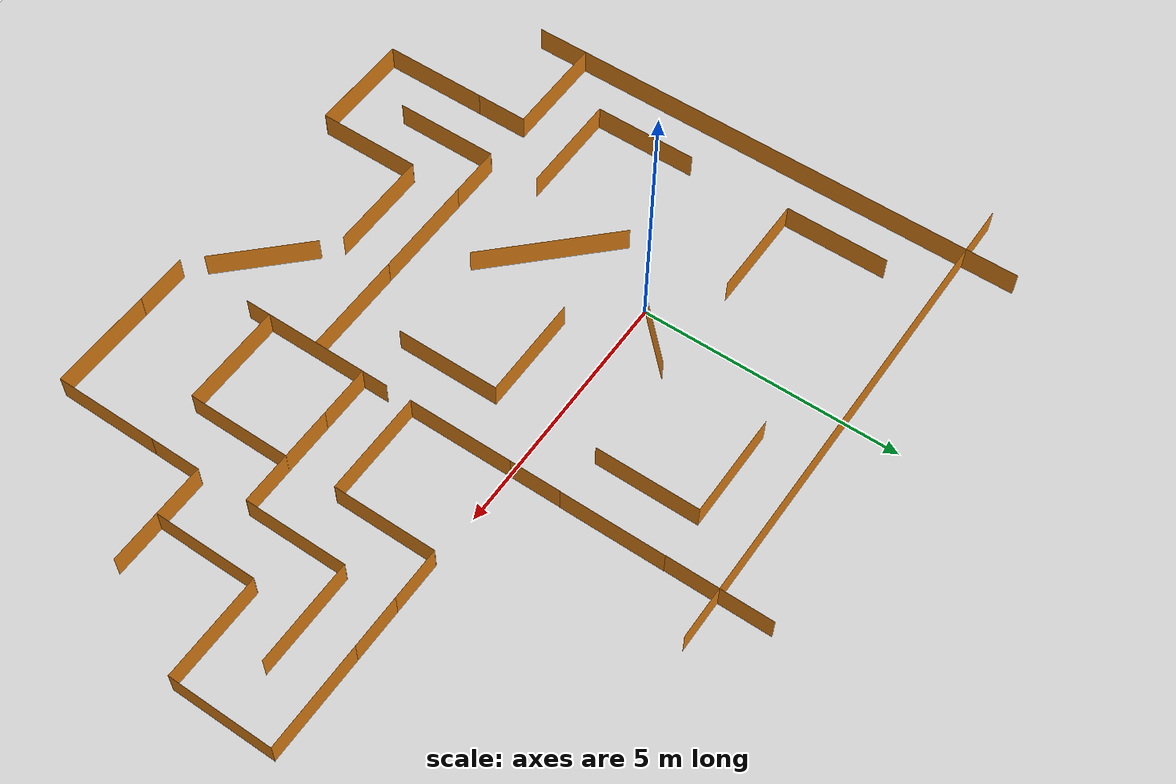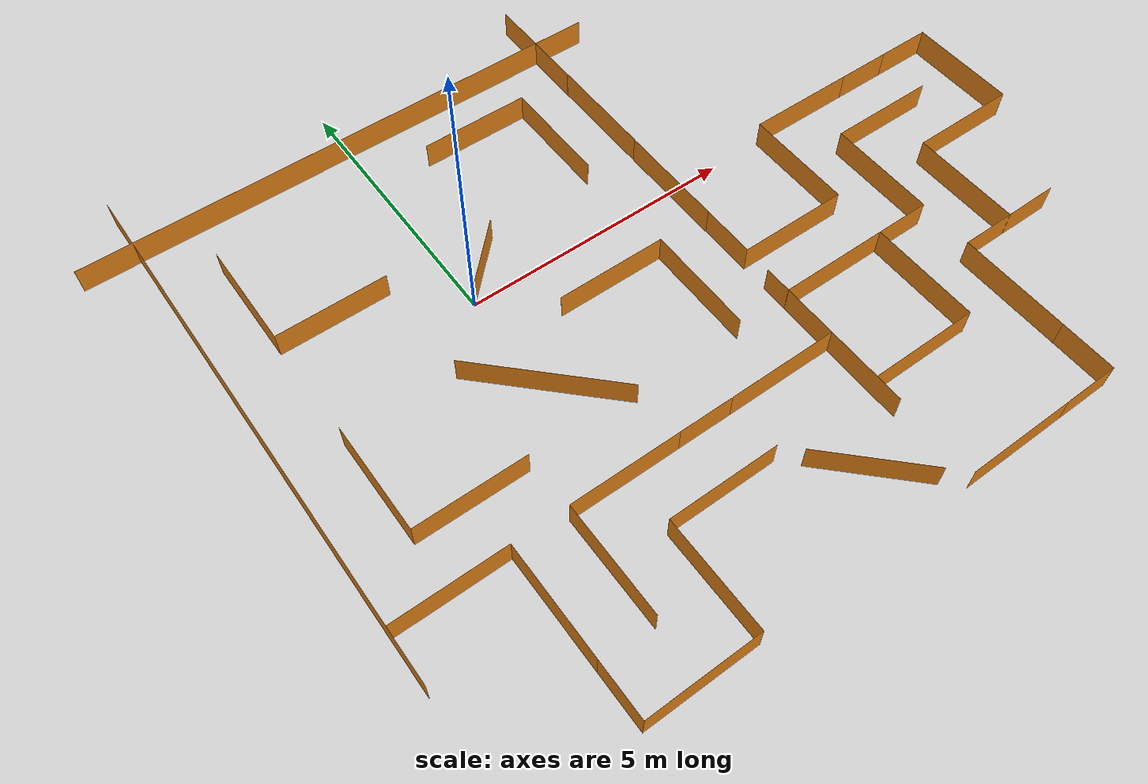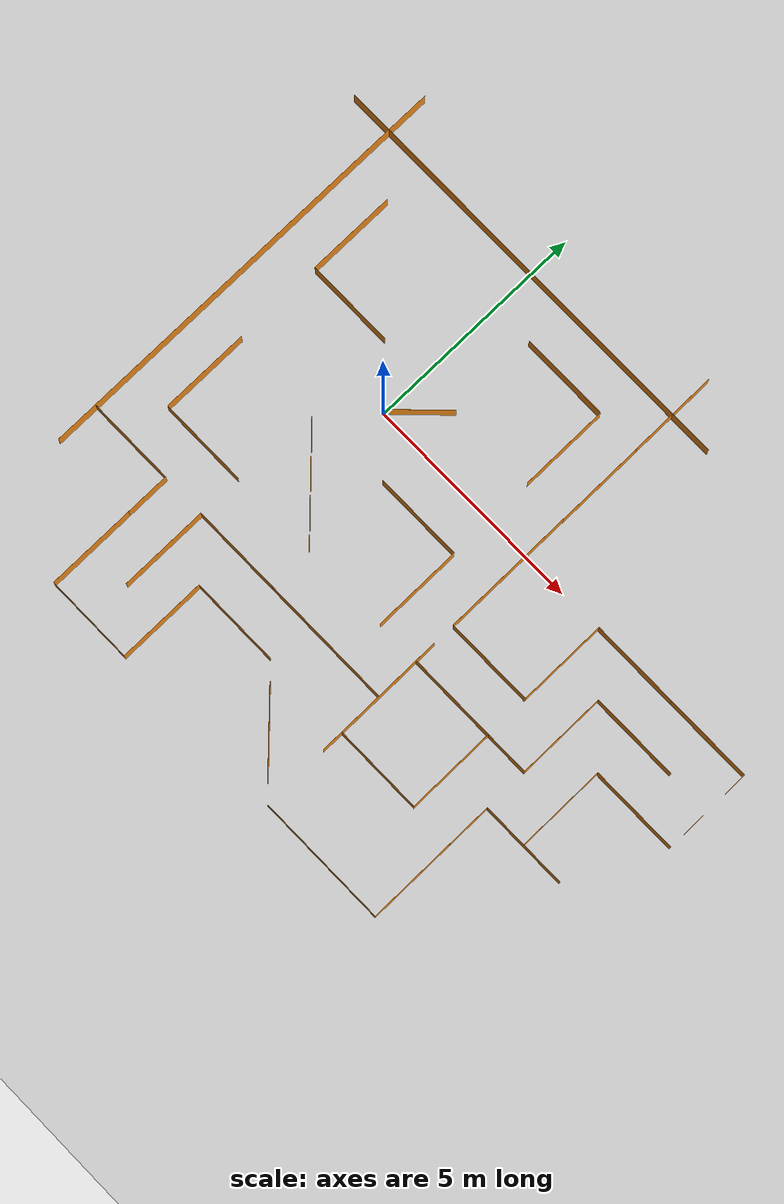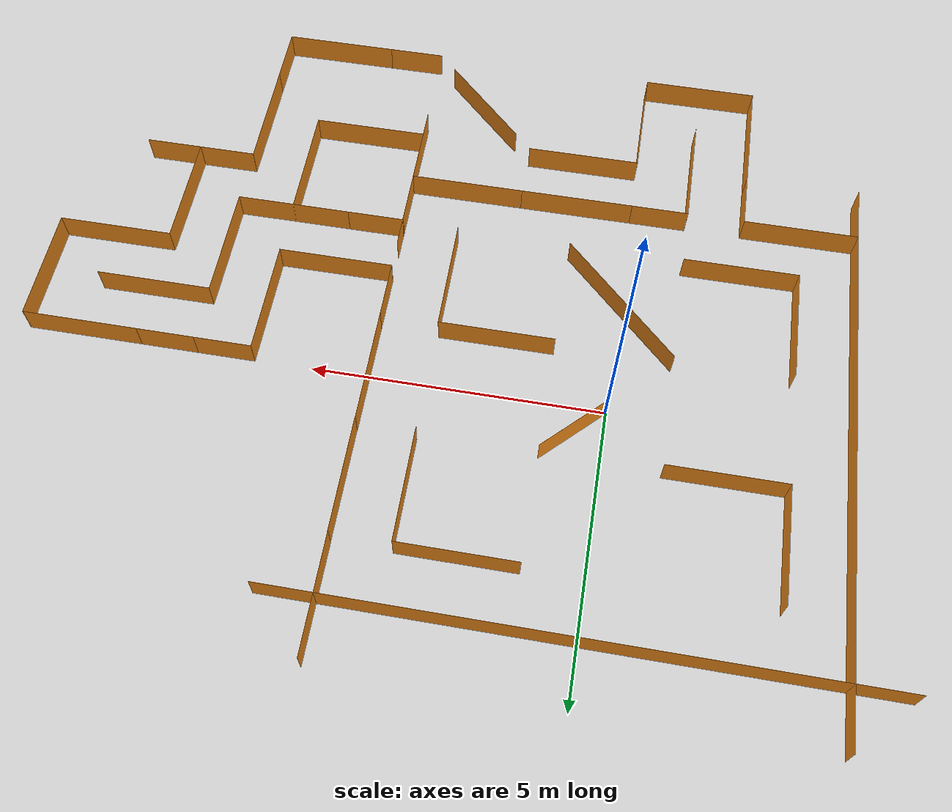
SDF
<sdf version="1.6">
 <world name="default">
  <model name="ground_plane">
   <static>1</static>
   <link name="link">
    <collision name="collision">
     <geometry><plane><normal>0 0 1</normal><size>100 100</size></plane></geometry>
     <surface><friction><ode><mu>100</mu><mu2>50</mu2></ode></friction></surface>
    </collision>
    <visual name="visual">
     <cast_shadows>0</cast_shadows>
     <geometry><plane><normal>0 0 1</normal><size>100 100</size></plane></geometry>
     <material>
      <script><uri>file://media/materials/scripts/gazebo.material</uri><name>Gazebo/Grey</name></script>
     </material>
    </visual>
   </link>
  </model>
  <model name="wall_0">
   <static>1</static>
   <link name="link">
    <collision name="collision"><geometry><box><size>10 0.001 1</size></box></geometry></collision>
    <visual name="visual">
     <geometry><box><size>10 0.001 1</size></box></geometry>
     <material>
      <script><name>Gazebo/Orange</name><uri>file://media/materials/scripts/gazebo.material</uri></script>
     </material>
    </visual>
   </link>
   <pose>0 4 0 0 0 -3.14159</pose>
  </model>
  <model name="wall_1">
   <static>1</static>
   <link name="link">
    <collision name="collision"><geometry><box><size>10 0.001 1</size></box></geometry></collision>
    <visual name="visual">
     <geometry><box><size>10 0.001 1</size></box></geometry>
     <material>
      <script><name>Gazebo/Orange</name><uri>file://media/materials/scripts/gazebo.material</uri></script>
     </material>
    </visual>
   </link>
   <pose>-4 0 0 0 0 -1.5708</pose>
  </model>
  <model name="wall_4">
   <static>1</static>
   <link name="link">
    <collision name="collision"><geometry><box><size>2 0.001 1</size></box></geometry></collision>
    <visual name="visual">
     <geometry><box><size>2 0.001 1</size></box></geometry>
     <material>
      <script><name>Gazebo/Orange</name><uri>file://media/materials/scripts/gazebo.material</uri></script>
     </material>
    </visual>
   </link>
   <pose>-3 -2 0 0 -0 1.5708</pose>
  </model>
  <model name="wall_5">
   <static>1</static>
   <link name="link">
    <collision name="collision"><geometry><box><size>2 0.001 1</size></box></geometry></collision>
    <visual name="visual">
     <geometry><box><size>2 0.001 1</size></box></geometry>
     <material>
      <script><name>Gazebo/Orange</name><uri>file://media/materials/scripts/gazebo.material</uri></script>
     </material>
    </visual>
   </link>
   <pose>-2 -3 0 0 -0 0</pose>
  </model>
  <model name="wall_6">
   <static>1</static>
   <link name="link">
    <collision name="collision"><geometry><box><size>2 0.001 1</size></box></geometry></collision>
    <visual name="visual">
     <geometry><box><size>2 0.001 1</size></box></geometry>
     <material>
      <script><name>Gazebo/Orange</name><uri>file://media/materials/scripts/gazebo.material</uri></script>
     </material>
    </visual>
   </link>
   <pose>3 2 0 0 0 -1.5708</pose>
  </model>
  <model name="wall_7">
   <static>1</static>
   <link name="link">
    <collision name="collision"><geometry><box><size>2 0.001 1</size></box></geometry></collision>
    <visual name="visual">
     <geometry><box><size>2 0.001 1</size></box></geometry>
     <material>
      <script><name>Gazebo/Orange</name><uri>file://media/materials/scripts/gazebo.material</uri></script>
     </material>
    </visual>
   </link>
   <pose>2 3 0 0 0 -3.14159</pose>
  </model>
  <model name="wall_8">
   <static>1</static>
   <link name="link">
    <collision name="collision"><geometry><box><size>2 0.001 1</size></box></geometry></collision>
    <visual name="visual">
     <geometry><box><size>2 0.001 1</size></box></geometry>
     <material>
      <script><name>Gazebo/Orange</name><uri>file://media/materials/scripts/gazebo.material</uri></script>
     </material>
    </visual>
   </link>
   <pose>2 -1 0 0 -0 0</pose>
  </model>
  <model name="wall_9">
   <static>1</static>
   <link name="link">
    <collision name="collision"><geometry><box><size>2 0.001 1</size></box></geometry></collision>
    <visual name="visual">
     <geometry><box><size>2 0.001 1</size></box></geometry>
     <material>
      <script><name>Gazebo/Orange</name><uri>file://media/materials/scripts/gazebo.material</uri></script>
     </material>
    </visual>
   </link>
   <pose>3 -2 0 0 0 -1.5708</pose>
  </model>
  <model name="wall_10">
   <static>1</static>
   <link name="link">
    <collision name="collision"><geometry><box><size>2 0.001 1</size></box></geometry></collision>
    <visual name="visual">
     <geometry><box><size>2 0.001 1</size></box></geometry>
     <material>
      <script><name>Gazebo/Orange</name><uri>file://media/materials/scripts/gazebo.material</uri></script>
     </material>
    </visual>
   </link>
   <pose>-2 1 0 0 0 -3.14159</pose>
  </model>
  <model name="wall_11">
   <static>1</static>
   <link name="link">
    <collision name="collision"><geometry><box><size>2 0.001 1</size></box></geometry></collision>
    <visual name="visual">
     <geometry><box><size>2 0.001 1</size></box></geometry>
     <material>
      <script><name>Gazebo/Orange</name><uri>file://media/materials/scripts/gazebo.material</uri></script>
     </material>
    </visual>
   </link>
   <pose>-3 2 0 0 -0 1.5708</pose>
  </model>
  <model name="wall_12">
   <static>1</static>
   <link name="link">
    <collision name="collision"><geometry><box><size>2.82843 0.001 1</size></box></geometry></collision>
    <visual name="visual">
     <geometry><box><size>2.82843 0.001 1</size></box></geometry>
     <material>
      <script><name>Gazebo/Orange</name><uri>file://media/materials/scripts/gazebo.material</uri></script>
     </material>
    </visual>
   </link>
   <pose>0 -2 0 0 0 -0.785398</pose>
  </model>
  <model name="wall_14">
   <static>1</static>
   <link name="link">
    <collision name="collision"><geometry><box><size>1.41421 0.001 1</size></box></geometry></collision>
    <visual name="visual">
     <geometry><box><size>1.41421 0.001 1</size></box></geometry>
     <material>
      <script><name>Gazebo/Orange</name><uri>file://media/materials/scripts/gazebo.material</uri></script>
     </material>
    </visual>
   </link>
   <pose>0.5 0.5 0 0 -0 0.785398</pose>
  </model>
  <model name="wall_13_clone">
   <static>1</static>
   <link name="link">
    <collision name="collision"><geometry><box><size>3 0.001 1</size></box></geometry></collision>
    <visual name="visual">
     <geometry><box><size>3 0.001 1</size></box></geometry>
     <material>
      <script><name>Gazebo/Orange</name><uri>file://media/materials/scripts/gazebo.material</uri></script>
     </material>
    </visual>
   </link>
   <pose>4 -4 0 0 0 -1.5708</pose>
  </model>
  <model name="wall_13_clone_clone">
   <static>1</static>
   <link name="link">
    <collision name="collision"><geometry><box><size>2.02412 0.001 1</size></box></geometry></collision>
    <visual name="visual">
     <geometry><box><size>2.02412 0.001 1</size></box></geometry>
     <material>
      <script><name>Gazebo/Orange</name><uri>file://media/materials/scripts/gazebo.material</uri></script>
     </material>
    </visual>
   </link>
   <pose>5 -3 0 0 -0 3.14159</pose>
  </model>
  <model name="wall_13_clone_clone_0">
   <static>1</static>
   <link name="link">
    <collision name="collision"><geometry><box><size>2.00836 0.001 1</size></box></geometry></collision>
    <visual name="visual">
     <geometry><box><size>2.00836 0.001 1</size></box></geometry>
     <material>
      <script><name>Gazebo/Orange</name><uri>file://media/materials/scripts/gazebo.material</uri></script>
     </material>
    </visual>
   </link>
   <pose>4 4 0 0 0 -1.5708</pose>
  </model>
  <model name="wall_13_clone_clone_1">
   <static>1</static>
   <link name="link">
    <collision name="collision"><geometry><box><size>2.00836 0.001 1</size></box></geometry></collision>
    <visual name="visual">
     <geometry><box><size>2.00836 0.001 1</size></box></geometry>
     <material>
      <script><name>Gazebo/Orange</name><uri>file://media/materials/scripts/gazebo.material</uri></script>
     </material>
    </visual>
   </link>
   <pose>4.00414 1.99809 0 0 0 -1.5708</pose>
  </model>
  <model name="wall_13_clone_clone_1_clone">
   <static>1</static>
   <link name="link">
    <collision name="collision"><geometry><box><size>2.00836 0.001 1</size></box></geometry></collision>
    <visual name="visual">
     <geometry><box><size>2.00836 0.001 1</size></box></geometry>
     <material>
      <script><name>Gazebo/Orange</name><uri>file://media/materials/scripts/gazebo.material</uri></script>
     </material>
    </visual>
   </link>
   <pose>4 0 0 0 0 -1.5708</pose>
  </model>
  <model name="wall_13_clone_clone_1_clone_0">
   <static>1</static>
   <link name="link">
    <collision name="collision"><geometry><box><size>2.00836 0.001 1</size></box></geometry></collision>
    <visual name="visual">
     <geometry><box><size>2.00836 0.001 1</size></box></geometry>
     <material>
      <script><name>Gazebo/Orange</name><uri>file://media/materials/scripts/gazebo.material</uri></script>
     </material>
    </visual>
   </link>
   <pose>4.00011 -0.995104 0 0 0 -1.5708</pose>
  </model>
  <model name="wall_13_clone_clone_1_clone_1">
   <static>1</static>
   <link name="link">
    <collision name="collision"><geometry><box><size>2.00836 0.001 1</size></box></geometry></collision>
    <visual name="visual">
     <geometry><box><size>2.00836 0.001 1</size></box></geometry>
     <material>
      <script><name>Gazebo/Orange</name><uri>file://media/materials/scripts/gazebo.material</uri></script>
     </material>
    </visual>
   </link>
   <pose>5 -2 0 0 0 -4e-06</pose>
  </model>
  <model name="wall_13_clone_clone_1_clone_2">
   <static>1</static>
   <link name="link">
    <collision name="collision"><geometry><box><size>2.00836 0.001 1</size></box></geometry></collision>
    <visual name="visual">
     <geometry><box><size>2.00836 0.001 1</size></box></geometry>
     <material>
      <script><name>Gazebo/Orange</name><uri>file://media/materials/scripts/gazebo.material</uri></script>
     </material>
    </visual>
   </link>
   <pose>7 -2 0 0 0 -1.5708</pose>
  </model>
  <model name="wall_13_clone_clone_1_clone_3">
   <static>1</static>
   <link name="link">
    <collision name="collision"><geometry><box><size>2.00836 0.001 1</size></box></geometry></collision>
    <visual name="visual">
     <geometry><box><size>2.00836 0.001 1</size></box></geometry>
     <material>
      <script><name>Gazebo/Orange</name><uri>file://media/materials/scripts/gazebo.material</uri></script>
     </material>
    </visual>
   </link>
   <pose>6 -1 0 0 0 -1.5708</pose>
  </model>
  <model name="wall_13_clone_clone_1_clone_4">
   <static>1</static>
   <link name="link">
    <collision name="collision"><geometry><box><size>2.00836 0.001 1</size></box></geometry></collision>
    <visual name="visual">
     <geometry><box><size>2.00836 0.001 1</size></box></geometry>
     <material>
      <script><name>Gazebo/Orange</name><uri>file://media/materials/scripts/gazebo.material</uri></script>
     </material>
    </visual>
   </link>
   <pose>7 -2 0 0 0 -1.5708</pose>
  </model>
  <model name="wall_13_clone_clone_1_clone_5">
   <static>1</static>
   <link name="link">
    <collision name="collision"><geometry><box><size>2.00836 0.001 1</size></box></geometry></collision>
    <visual name="visual">
     <geometry><box><size>2.00836 0.001 1</size></box></geometry>
     <material>
      <script><name>Gazebo/Orange</name><uri>file://media/materials/scripts/gazebo.material</uri></script>
     </material>
    </visual>
   </link>
   <pose>6 -3 0 0 -0 3.14159</pose>
  </model>
  <model name="wall_13_clone_clone_clone">
   <static>1</static>
   <link name="link">
    <collision name="collision"><geometry><box><size>1.99802 0.001 1</size></box></geometry></collision>
    <visual name="visual">
     <geometry><box><size>1.99802 0.001 1</size></box></geometry>
     <material>
      <script><name>Gazebo/Orange</name><uri>file://media/materials/scripts/gazebo.material</uri></script>
     </material>
    </visual>
   </link>
   <pose>-3 -4 0 0 -0 3.14159</pose>
  </model>
  <model name="wall_13_clone_clone_clone_1">
   <static>1</static>
   <link name="link">
    <collision name="collision"><geometry><box><size>1.99802 0.001 1</size></box></geometry></collision>
    <visual name="visual">
     <geometry><box><size>1.99802 0.001 1</size></box></geometry>
     <material>
      <script><name>Gazebo/Orange</name><uri>file://media/materials/scripts/gazebo.material</uri></script>
     </material>
    </visual>
   </link>
   <pose>1 -4 0 0 -0 3.14159</pose>
  </model>
  <model name="wall_13_clone_clone_clone_2">
   <static>1</static>
   <link name="link">
    <collision name="collision"><geometry><box><size>1.99802 0.001 1</size></box></geometry></collision>
    <visual name="visual">
     <geometry><box><size>1.99802 0.001 1</size></box></geometry>
     <material>
      <script><name>Gazebo/Orange</name><uri>file://media/materials/scripts/gazebo.material</uri></script>
     </material>
    </visual>
   </link>
   <pose>3 -4 0 0 -0 3.14159</pose>
  </model>
  <model name="wall_13_clone_clone_1_clone_3_clone">
   <static>1</static>
   <link name="link">
    <collision name="collision"><geometry><box><size>2.00836 0.001 1</size></box></geometry></collision>
    <visual name="visual">
     <geometry><box><size>2.00836 0.001 1</size></box></geometry>
     <material>
      <script><name>Gazebo/Orange</name><uri>file://media/materials/scripts/gazebo.material</uri></script>
     </material>
    </visual>
   </link>
   <pose>-2 -5 0 0 0 -1.5708</pose>
  </model>
  <model name="wall_13_clone_clone_1_clone_3_clone_0">
   <static>1</static>
   <link name="link">
    <collision name="collision"><geometry><box><size>2.00836 0.001 1</size></box></geometry></collision>
    <visual name="visual">
     <geometry><box><size>2.00836 0.001 1</size></box></geometry>
     <material>
      <script><name>Gazebo/Orange</name><uri>file://media/materials/scripts/gazebo.material</uri></script>
     </material>
    </visual>
   </link>
   <pose>-1 -5 0 0 0 -1.5708</pose>
  </model>
  <model name="wall_13_clone_clone_1_clone_1_clone">
   <static>1</static>
   <link name="link">
    <collision name="collision"><geometry><box><size>2.00836 0.001 1</size></box></geometry></collision>
    <visual name="visual">
     <geometry><box><size>2.00836 0.001 1</size></box></geometry>
     <material>
      <script><name>Gazebo/Orange</name><uri>file://media/materials/scripts/gazebo.material</uri></script>
     </material>
    </visual>
   </link>
   <pose>0 -4 0 0 0 -4e-06</pose>
  </model>
  <model name="wall_13_clone_clone_1_clone_1_clone_0">
   <static>1</static>
   <link name="link">
    <collision name="collision"><geometry><box><size>2.00836 0.001 1</size></box></geometry></collision>
    <visual name="visual">
     <geometry><box><size>2.00836 0.001 1</size></box></geometry>
     <material>
      <script><name>Gazebo/Orange</name><uri>file://media/materials/scripts/gazebo.material</uri></script>
     </material>
    </visual>
   </link>
   <pose>-1 -7 0 0 0 -4e-06</pose>
  </model>
  <model name="wall_13_clone_clone_1_clone_0_clone">
   <static>1</static>
   <link name="link">
    <collision name="collision"><geometry><box><size>2.00836 0.001 1</size></box></geometry></collision>
    <visual name="visual">
     <geometry><box><size>2.00836 0.001 1</size></box></geometry>
     <material>
      <script><name>Gazebo/Orange</name><uri>file://media/materials/scripts/gazebo.material</uri></script>
     </material>
    </visual>
   </link>
   <pose>-2 -6 0 0 0 -1.5708</pose>
  </model>
  <model name="wall_13_clone_clone_1_clone_0_clone_0">
   <static>1</static>
   <link name="link">
    <collision name="collision"><geometry><box><size>2.00836 0.001 1</size></box></geometry></collision>
    <visual name="visual">
     <geometry><box><size>2.00836 0.001 1</size></box></geometry>
     <material>
      <script><name>Gazebo/Orange</name><uri>file://media/materials/scripts/gazebo.material</uri></script>
     </material>
    </visual>
   </link>
   <pose>0 -6 0 0 0 -1.5708</pose>
  </model>
  <model name="wall_13_clone_clone_clone_1_clone">
   <static>1</static>
   <link name="link">
    <collision name="collision"><geometry><box><size>1.99802 0.001 1</size></box></geometry></collision>
    <visual name="visual">
     <geometry><box><size>1.99802 0.001 1</size></box></geometry>
     <material>
      <script><name>Gazebo/Orange</name><uri>file://media/materials/scripts/gazebo.material</uri></script>
     </material>
    </visual>
   </link>
   <pose>1 -5 0 0 -0 3.14159</pose>
  </model>
  <model name="wall_13_clone_clone_clone_1_clone_0">
   <static>1</static>
   <link name="link">
    <collision name="collision"><geometry><box><size>1.99802 0.001 1</size></box></geometry></collision>
    <visual name="visual">
     <geometry><box><size>1.99802 0.001 1</size></box></geometry>
     <material>
      <script><name>Gazebo/Orange</name><uri>file://media/materials/scripts/gazebo.material</uri></script>
     </material>
    </visual>
   </link>
   <pose>3 -6 0 0 -0 2.35619</pose>
  </model>
  <model name="wall_13_clone_clone_clone_1_clone_1">
   <static>1</static>
   <link name="link">
    <collision name="collision"><geometry><box><size>1.99802 0.001 1</size></box></geometry></collision>
    <visual name="visual">
     <geometry><box><size>1.99802 0.001 1</size></box></geometry>
     <material>
      <script><name>Gazebo/Orange</name><uri>file://media/materials/scripts/gazebo.material</uri></script>
     </material>
    </visual>
   </link>
   <pose>5 -7 0 0 -0 3.14159</pose>
  </model>
  <model name="wall_13_clone_clone_clone_1_clone_2">
   <static>1</static>
   <link name="link">
    <collision name="collision"><geometry><box><size>1.99802 0.001 1</size></box></geometry></collision>
    <visual name="visual">
     <geometry><box><size>1.99802 0.001 1</size></box></geometry>
     <material>
      <script><name>Gazebo/Orange</name><uri>file://media/materials/scripts/gazebo.material</uri></script>
     </material>
    </visual>
   </link>
   <pose>5 -5 0 0 -0 3.14159</pose>
  </model>
  <model name="wall_13_clone_clone_1_clone_3_clone_1">
   <static>1</static>
   <link name="link">
    <collision name="collision"><geometry><box><size>2.00836 0.001 1</size></box></geometry></collision>
    <visual name="visual">
     <geometry><box><size>2.00836 0.001 1</size></box></geometry>
     <material>
      <script><name>Gazebo/Orange</name><uri>file://media/materials/scripts/gazebo.material</uri></script>
     </material>
    </visual>
   </link>
   <pose>7 -6 0 0 0 -1.5708</pose>
  </model>
  <model name="wall_13_clone_clone_1_clone_3_clone_2">
   <static>1</static>
   <link name="link">
    <collision name="collision"><geometry><box><size>2.00836 0.001 1</size></box></geometry></collision>
    <visual name="visual">
     <geometry><box><size>2.00836 0.001 1</size></box></geometry>
     <material>
      <script><name>Gazebo/Orange</name><uri>file://media/materials/scripts/gazebo.material</uri></script>
     </material>
    </visual>
   </link>
   <pose>7 -5 0 0 0 -1.5708</pose>
  </model>
  <model name="wall_13_clone_clone_1_clone_3_clone_3">
   <static>1</static>
   <link name="link">
    <collision name="collision"><geometry><box><size>2.00836 0.001 1</size></box></geometry></collision>
    <visual name="visual">
     <geometry><box><size>2.00836 0.001 1</size></box></geometry>
     <material>
      <script><name>Gazebo/Orange</name><uri>file://media/materials/scripts/gazebo.material</uri></script>
     </material>
    </visual>
   </link>
   <pose>6 -4 0 0 0 -1.5708</pose>
  </model>
  <model name="wall_13_clone_clone_clone_1_clone_1_clone">
   <static>1</static>
   <link name="link">
    <collision name="collision"><geometry><box><size>1.99802 0.001 1</size></box></geometry></collision>
    <visual name="visual">
     <geometry><box><size>1.99802 0.001 1</size></box></geometry>
     <material>
      <script><name>Gazebo/Orange</name><uri>file://media/materials/scripts/gazebo.material</uri></script>
     </material>
    </visual>
   </link>
   <pose>6 -7 0 0 -0 3.14159</pose>
  </model>
  <model name="wall_13_clone_clone_clone_1_clone_1_clone_0">
   <static>1</static>
   <link name="link">
    <collision name="collision"><geometry><box><size>1.99802 0.001 1</size></box></geometry></collision>
    <visual name="visual">
     <geometry><box><size>1.99802 0.001 1</size></box></geometry>
     <material>
      <script><name>Gazebo/Orange</name><uri>file://media/materials/scripts/gazebo.material</uri></script>
     </material>
    </visual>
   </link>
   <pose>8 -4 0 0 -0 3.14159</pose>
  </model>
  <model name="wall_13_clone_clone_1_clone_3_clone_1_clone">
   <static>1</static>
   <link name="link">
    <collision name="collision"><geometry><box><size>2.00836 0.001 1</size></box></geometry></collision>
    <visual name="visual">
     <geometry><box><size>2.00836 0.001 1</size></box></geometry>
     <material>
      <script><name>Gazebo/Orange</name><uri>file://media/materials/scripts/gazebo.material</uri></script>
     </material>
    </visual>
   </link>
   <pose>8 -3 0 0 0 -1.5708</pose>
  </model>
  <model name="wall_13_clone_clone_clone_1_clone_1_clone_0_clone">
   <static>1</static>
   <link name="link">
    <collision name="collision"><geometry><box><size>1.99802 0.001 1</size></box></geometry></collision>
    <visual name="visual">
     <geometry><box><size>1.99802 0.001 1</size></box></geometry>
     <material>
      <script><name>Gazebo/Orange</name><uri>file://media/materials/scripts/gazebo.material</uri></script>
     </material>
    </visual>
   </link>
   <pose>7 0 0 0 -0 3.14159</pose>
  </model>
  <model name="wall_13_clone_clone_1_clone_4_clone">
   <static>1</static>
   <link name="link">
    <collision name="collision"><geometry><box><size>2.00836 0.001 1</size></box></geometry></collision>
    <visual name="visual">
     <geometry><box><size>2.00836 0.001 1</size></box></geometry>
     <material>
      <script><name>Gazebo/Orange</name><uri>file://media/materials/scripts/gazebo.material</uri></script>
     </material>
    </visual>
   </link>
   <pose>6 -1 0 0 0 -1.5708</pose>
  </model>
  <model name="wall_13_clone_clone_clone_1_clone_1_clone_0_clone_clone">
   <static>1</static>
   <link name="link">
    <collision name="collision"><geometry><box><size>1.99802 0.001 1</size></box></geometry></collision>
    <visual name="visual">
     <geometry><box><size>1.99802 0.001 1</size></box></geometry>
     <material>
      <script><name>Gazebo/Orange</name><uri>file://media/materials/scripts/gazebo.material</uri></script>
     </material>
    </visual>
   </link>
   <pose>8 0 0 0 -0 3.14159</pose>
  </model>
  <model name="wall_13_clone_clone_clone_1_clone_1_clone_0_clone_clone_0">
   <static>1</static>
   <link name="link">
    <collision name="collision"><geometry><box><size>1.99802 0.001 1</size></box></geometry></collision>
    <visual name="visual">
     <geometry><box><size>1.99802 0.001 1</size></box></geometry>
     <material>
      <script><name>Gazebo/Orange</name><uri>file://media/materials/scripts/gazebo.material</uri></script>
     </material>
    </visual>
   </link>
   <pose>9 -2 0 0 -0 3.14159</pose>
  </model>
  <model name="wall_13_clone_clone_clone_1_clone_1_clone_0_clone_clone_1">
   <static>1</static>
   <link name="link">
    <collision name="collision"><geometry><box><size>1.99802 0.001 1</size></box></geometry></collision>
    <visual name="visual">
     <geometry><box><size>1.99802 0.001 1</size></box></geometry>
     <material>
      <script><name>Gazebo/Orange</name><uri>file://media/materials/scripts/gazebo.material</uri></script>
     </material>
    </visual>
   </link>
   <pose>8 -1 0 0 -0 3.14159</pose>
  </model>
  <model name="wall_13_clone_clone_1_clone_2_clone">
   <static>1</static>
   <link name="link">
    <collision name="collision"><geometry><box><size>2.00836 0.001 1</size></box></geometry></collision>
    <visual name="visual">
     <geometry><box><size>2.00836 0.001 1</size></box></geometry>
     <material>
      <script><name>Gazebo/Orange</name><uri>file://media/materials/scripts/gazebo.material</uri></script>
     </material>
    </visual>
   </link>
   <pose>10 -1 0 0 0 -1.5708</pose>
  </model>
  <model name="wall_13_clone_clone_clone_1_clone_1_clone_0_clone_clone_clone">
   <static>1</static>
   <link name="link">
    <collision name="collision"><geometry><box><size>1.99802 0.001 1</size></box></geometry></collision>
    <visual name="visual">
     <geometry><box><size>1.99802 0.001 1</size></box></geometry>
     <material>
      <script><name>Gazebo/Orange</name><uri>file://media/materials/scripts/gazebo.material</uri></script>
     </material>
    </visual>
   </link>
   <pose>9 0 0 0 -0 3.14159</pose>
  </model>
 </world>
</sdf>
